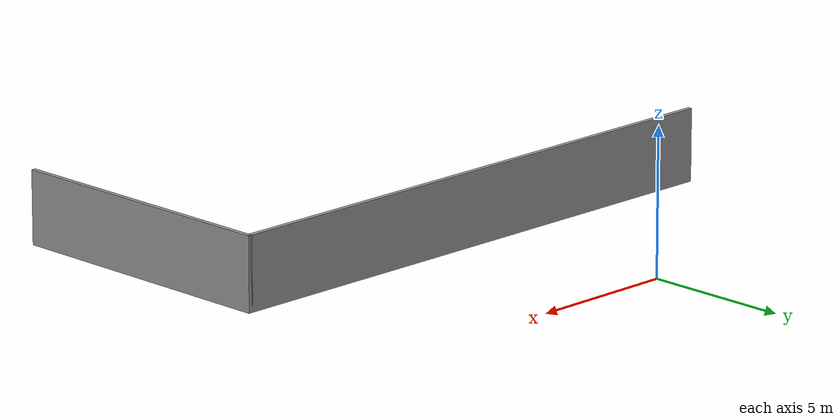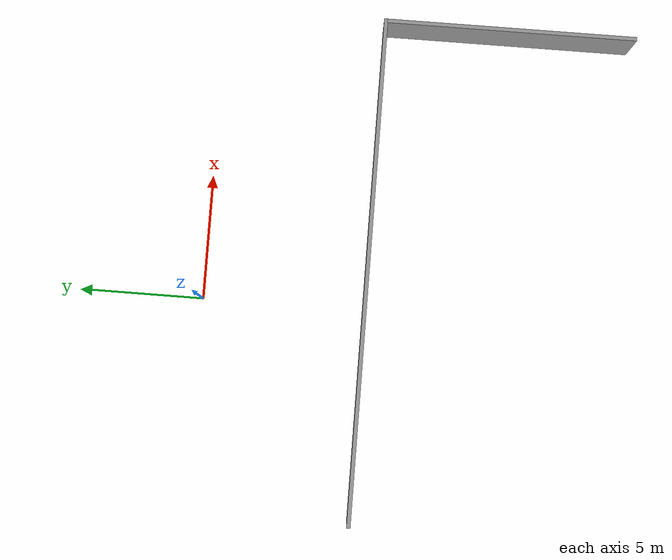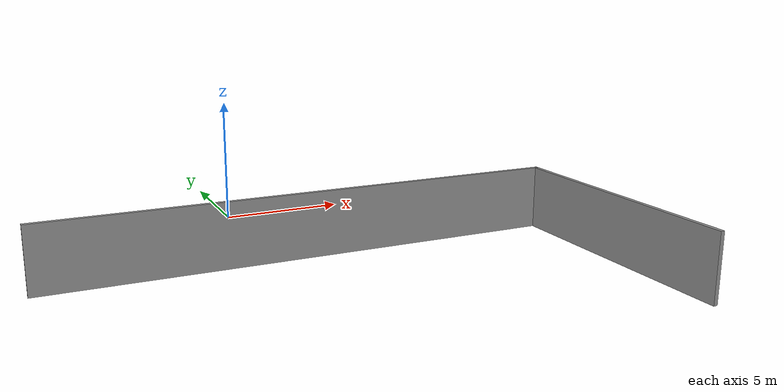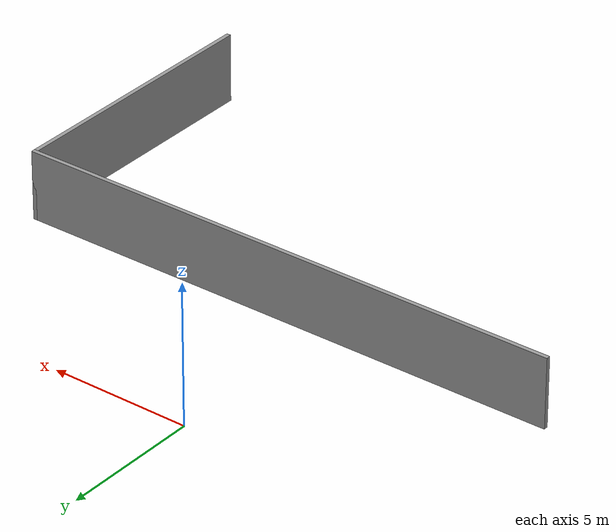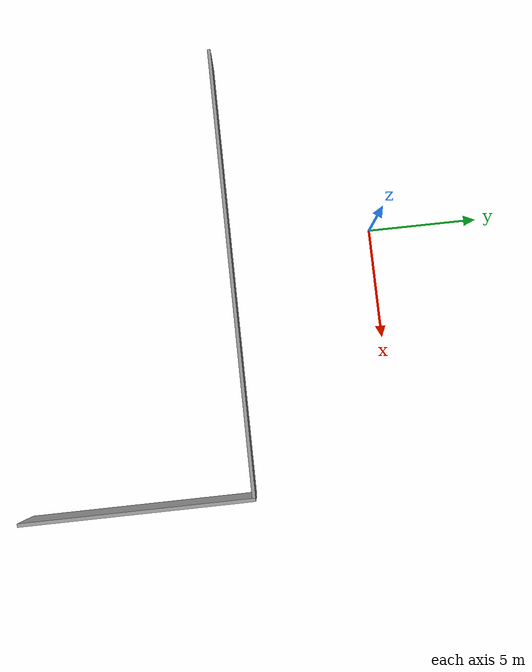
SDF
<?xml version='1.0'?>
<sdf version='1.7'>
  <model name='L_wall'>
    <pose>1.43931 -8.22197 0 0 -0 0</pose>
    <link name='Wall_2'>
      <collision name='Wall_2_Collision'>
        <geometry>
          <box>
            <size>20 0.15 2.5</size>
          </box>
        </geometry>
        <pose>0 0 1.25 0 -0 0</pose>
      </collision>
      <visual name='Wall_2_Visual'>
        <pose>0 0 1.25 0 -0 0</pose>
        <geometry>
          <box>
            <size>20 0.15 2.5</size>
          </box>
        </geometry>
        <material>
          <script>
            <uri>file://media/materials/scripts/gazebo.material</uri>
            <name>Gazebo/Grey</name>
          </script>
          <ambient>1 1 1 1</ambient>
        </material>
        <meta>
          <layer>0</layer>
        </meta>
      </visual>
      <pose>-0 1.70303 0 0 -0 0</pose>
    </link>
    <link name='Wall_3'>
      <collision name='Wall_3_Collision'>
        <geometry>
          <box>
            <size>10 0.15 2.5</size>
          </box>
        </geometry>
        <pose>0 0 1.25 0 -0 0</pose>
      </collision>
      <visual name='Wall_3_Visual'>
        <pose>0 0 1.25 0 -0 0</pose>
        <geometry>
          <box>
            <size>10 0.15 2.5</size>
          </box>
        </geometry>
        <material>
          <script>
            <uri>file://media/materials/scripts/gazebo.material</uri>
            <name>Gazebo/Grey</name>
          </script>
          <ambient>1 1 1 1</ambient>
        </material>
        <meta>
          <layer>0</layer>
        </meta>
      </visual>
      <pose>9.925 -3.22197 0 0 -0 -1.5708</pose>
    </link>
    <static>1</static>
  </model>
</sdf>
